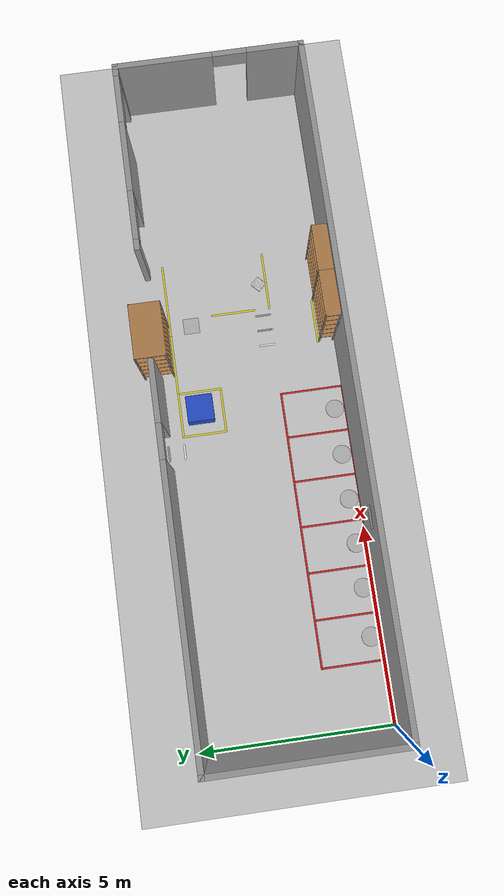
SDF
<sdf version="1.6">
 <world name="default">
  <model name="ground_plane">
   <static>1</static>
   <link name="link">
    <collision name="collision">
     <geometry><plane><normal>0 0 1</normal><size>100 100</size></plane></geometry>
     <surface><friction><ode><mu>100</mu><mu2>50</mu2></ode></friction></surface>
    </collision>
    <visual name="visual">
     <cast_shadows>0</cast_shadows>
     <geometry><plane><normal>0 0 1</normal><size>100 100</size></plane></geometry>
     <material>
      <script><uri>file://media/materials/scripts/gazebo.material</uri><name>Gazebo/Grey</name></script>
     </material>
    </visual>
   </link>
  </model>
  <model name="parkingArea_720x160">
   <link name="link_3">
    <inertial>
     <mass>1</mass>
     <inertia>
      <ixx>0.166667</ixx>
      <ixy>0</ixy>
      <ixz>0</ixz>
      <iyy>0.166667</iyy>
      <iyz>0</iyz>
      <izz>0.166667</izz>
     </inertia>
    </inertial>
    <visual name="visual">
     <pose>0.825 0 0 0 -0 0</pose>
     <geometry><box><size>0.05 7.25 0.001</size></box></geometry>
     <material>
      <lighting>1</lighting>
      <script><uri>file://media/materials/scripts/gazebo.material</uri><name>Gazebo/Red</name></script>
     </material>
    </visual>
    <visual name="ModelPreview_6::link_3::visual_1">
     <pose>-0.825 0 0 0 -0 0</pose>
     <geometry><box><size>0.05 7.25 0.001</size></box></geometry>
     <material>
      <lighting>1</lighting>
      <script><uri>file://media/materials/scripts/gazebo.material</uri><name>Gazebo/Red</name></script>
     </material>
    </visual>
    <visual name="ModelPreview_6::link_3::visual_2">
     <pose>0 3.6 0 0 -0 0</pose>
     <geometry><box><size>1.6 0.05 0.001</size></box></geometry>
     <material>
      <lighting>1</lighting>
      <script><uri>file://media/materials/scripts/gazebo.material</uri><name>Gazebo/Red</name></script>
     </material>
    </visual>
    <visual name="ModelPreview_6::link_3::visual_3">
     <pose>0 -3.6 0 0 -0 0</pose>
     <geometry><box><size>1.6 0.05 0.001</size></box></geometry>
     <material>
      <lighting>1</lighting>
      <script><uri>file://media/materials/scripts/gazebo.material</uri><name>Gazebo/Red</name></script>
     </material>
    </visual>
    <visual name="ModelPreview_6::link_3::visual_4">
     <pose>0 -2.4 0 0 -0 0</pose>
     <geometry><box><size>1.6 0.05 0.001</size></box></geometry>
     <material>
      <lighting>1</lighting>
      <script><uri>file://media/materials/scripts/gazebo.material</uri><name>Gazebo/Red</name></script>
     </material>
    </visual>
    <visual name="ModelPreview_6::link_3::visual_5">
     <pose>0 -1.2 0 0 -0 0</pose>
     <geometry><box><size>1.6 0.05 0.001</size></box></geometry>
     <material>
      <lighting>1</lighting>
      <script><uri>file://media/materials/scripts/gazebo.material</uri><name>Gazebo/Red</name></script>
     </material>
    </visual>
    <visual name="ModelPreview_6::link_3::visual_6">
     <geometry><box><size>1.6 0.05 0.001</size></box></geometry>
     <material>
      <lighting>1</lighting>
      <script><uri>file://media/materials/scripts/gazebo.material</uri><name>Gazebo/Red</name></script>
     </material>
    </visual>
    <visual name="ModelPreview_6::link_3::visual_7">
     <pose>0 1.2 0 0 -0 0</pose>
     <geometry><box><size>1.6 0.05 0.001</size></box></geometry>
     <material>
      <lighting>1</lighting>
      <script><uri>file://media/materials/scripts/gazebo.material</uri><name>Gazebo/Red</name></script>
     </material>
    </visual>
    <visual name="ModelPreview_6::link_3::visual_8">
     <pose>0 2.4 0 0 -0 0</pose>
     <geometry><box><size>1.6 0.05 0.001</size></box></geometry>
     <material>
      <lighting>1</lighting>
      <script><uri>file://media/materials/scripts/gazebo.material</uri><name>Gazebo/Red</name></script>
     </material>
    </visual>
    <visual name="ModelPreview_6::link_3::visual_9">
     <pose>-0.47 2.65 0 0 -0 1</pose>
     <geometry>
      <mesh><uri>model://parkingArea_720x160/model/model.dae</uri><scale>0.266 0.266 0.266</scale></mesh>
     </geometry>
     <material><lighting>1</lighting></material>
    </visual>
    <visual name="ModelPreview_6::link_3::visual_10">
     <pose>-0.47 1.41 0 0 -0 1</pose>
     <geometry>
      <mesh><uri>model://parkingArea_720x160/model/model.dae</uri><scale>0.266 0.266 0.266</scale></mesh>
     </geometry>
     <material><lighting>1</lighting></material>
    </visual>
    <visual name="ModelPreview_6::link_3::visual_11">
     <pose>-0.47 0.26 0 0 -0 1</pose>
     <geometry>
      <mesh><uri>model://parkingArea_720x160/model/model.dae</uri><scale>0.266 0.266 0.266</scale></mesh>
     </geometry>
     <material><lighting>1</lighting></material>
    </visual>
    <visual name="ModelPreview_6::link_3::visual_12">
     <pose>-0.47 -0.9 0 0 -0 1</pose>
     <geometry>
      <mesh><uri>model://parkingArea_720x160/model/model.dae</uri><scale>0.266 0.266 0.266</scale></mesh>
     </geometry>
     <material><lighting>1</lighting></material>
    </visual>
    <visual name="ModelPreview_6::link_3::visual_13">
     <pose>-0.47 -2.1 0 0 -0 1</pose>
     <geometry>
      <mesh><uri>model://parkingArea_720x160/model/model.dae</uri><scale>0.266 0.266 0.8266</scale></mesh>
     </geometry>
     <material><lighting>1</lighting></material>
    </visual>
    <visual name="ModelPreview_6::link_3::visual_14">
     <pose>-0.47 -3.34 0 0 -0 1</pose>
     <geometry>
      <mesh><uri>model://parkingArea_720x160/model/model.dae</uri><scale>0.266 0.266 0.266</scale></mesh>
     </geometry>
    </visual>
   </link>
   <static>1</static>
   <pose>5.2 0.8 0 0 -0 1.5708</pose>
  </model>
  <model name="shelfDemo_120cmx40cm">
   <link name="link_0">
    <inertial>
     <mass>1</mass>
     <inertia>
      <ixx>0.166667</ixx>
      <ixy>0</ixy>
      <ixz>0</ixz>
      <iyy>0.166667</iyy>
      <iyz>0</iyz>
      <izz>0.166667</izz>
     </inertia>
    </inertial>
    <visual name="visual">
     <pose>0 0 0.414 0 -0 0</pose>
     <geometry><box><size>1.2 0.4 0.03</size></box></geometry>
     <material>
      <lighting>1</lighting>
      <script><uri>file://media/materials/scripts/gazebo.material</uri><name>Gazebo/WoodFloor</name></script>
      <shader type="pixel"><normal_map>__default__</normal_map></shader>
     </material>
    </visual>
    <visual name="ModelPreview_0::link_0::visual_2">
     <pose>0 0 0.828 0 -0 0</pose>
     <geometry><box><size>1.2 0.4 0.03</size></box></geometry>
     <material>
      <lighting>1</lighting>
      <script><uri>file://media/materials/scripts/gazebo.material</uri><name>Gazebo/WoodFloor</name></script>
      <shader type="pixel"><normal_map>__default__</normal_map></shader>
     </material>
    </visual>
    <visual name="ModelPreview_0::link_0::visual_3">
     <pose>0 0 1.242 0 -0 0</pose>
     <geometry><box><size>1.2 0.4 0.03</size></box></geometry>
     <material>
      <lighting>1</lighting>
      <script><uri>file://media/materials/scripts/gazebo.material</uri><name>Gazebo/WoodFloor</name></script>
      <shader type="pixel"><normal_map>__default__</normal_map></shader>
     </material>
    </visual>
    <visual name="ModelPreview_0::link_0::visual_4">
     <pose>0 0 1.656 0 -0 0</pose>
     <geometry><box><size>1.2 0.4 0.03</size></box></geometry>
     <material>
      <lighting>1</lighting>
      <script><uri>file://media/materials/scripts/gazebo.material</uri><name>Gazebo/WoodFloor</name></script>
      <shader type="pixel"><normal_map>__default__</normal_map></shader>
     </material>
    </visual>
    <visual name="ModelPreview_0::link_0::visual_5">
     <pose>0 0 2.07 0 -0 0</pose>
     <geometry><box><size>1.2 0.4 0.03</size></box></geometry>
     <material>
      <lighting>1</lighting>
      <script><uri>file://media/materials/scripts/gazebo.material</uri><name>Gazebo/WoodFloor</name></script>
      <shader type="pixel"><normal_map>__default__</normal_map></shader>
     </material>
    </visual>
    <visual name="ModelPreview_0::link_0::visual_6">
     <pose>0 0 2.484 0 -0 0</pose>
     <geometry><box><size>1.2 0.4 0.03</size></box></geometry>
     <material>
      <lighting>1</lighting>
      <script><uri>file://media/materials/scripts/gazebo.material</uri><name>Gazebo/WoodFloor</name></script>
      <shader type="pixel"><normal_map>__default__</normal_map></shader>
     </material>
    </visual>
    <visual name="ModelPreview_0::link_0::visual_7">
     <pose>0.585 0.185 0 0 -0 0</pose>
     <geometry>
      <mesh><uri>model://shelfDemo_91/model/2-5mDirek.stl</uri><scale>0.0008 0.0008 0.001</scale></mesh>
     </geometry>
     <material>
      <lighting>1</lighting>
      <script><uri>file://media/materials/scripts/gazebo.material</uri><name>Gazebo/Grey</name></script>
      <shader type="pixel"><normal_map>__default__</normal_map></shader>
      <ambient>0.3 0.3 0.3 1</ambient>
      <diffuse>0.7 0.7 0.7 1</diffuse>
      <specular>0.01 0.01 0.01 1</specular>
      <emissive>0 0 0 1</emissive>
     </material>
    </visual>
    <visual name="ModelPreview_0::link_0::visual_8">
     <pose>-0.585 0.185 0 0 -0 0</pose>
     <geometry>
      <mesh><uri>model://shelfDemo_91/model/2-5mDirek.stl</uri><scale>0.0008 0.0008 0.001</scale></mesh>
     </geometry>
     <material>
      <lighting>1</lighting>
      <script><uri>file://media/materials/scripts/gazebo.material</uri><name>Gazebo/Grey</name></script>
      <shader type="pixel"><normal_map>__default__</normal_map></shader>
      <ambient>0.3 0.3 0.3 1</ambient>
      <diffuse>0.7 0.7 0.7 1</diffuse>
      <specular>0.01 0.01 0.01 1</specular>
      <emissive>0 0 0 1</emissive>
     </material>
    </visual>
    <visual name="ModelPreview_0::link_0::visual_9">
     <pose>0.585 -0.185 0 0 -0 0</pose>
     <geometry>
      <mesh><uri>model://shelfDemo_91/model/2-5mDirek.stl</uri><scale>0.0008 0.0008 0.001</scale></mesh>
     </geometry>
     <material>
      <lighting>1</lighting>
      <script><uri>file://media/materials/scripts/gazebo.material</uri><name>Gazebo/Grey</name></script>
      <shader type="pixel"><normal_map>__default__</normal_map></shader>
      <ambient>0.3 0.3 0.3 1</ambient>
      <diffuse>0.7 0.7 0.7 1</diffuse>
      <specular>0.01 0.01 0.01 1</specular>
      <emissive>0 0 0 1</emissive>
     </material>
    </visual>
    <visual name="ModelPreview_0::link_0::visual_10">
     <pose>-0.585 -0.185 0 0 -0 0</pose>
     <geometry>
      <mesh><uri>model://shelfDemo_91/model/2-5mDirek.stl</uri><scale>0.0008 0.0008 0.001</scale></mesh>
     </geometry>
     <material>
      <lighting>1</lighting>
      <script><uri>file://media/materials/scripts/gazebo.material</uri><name>Gazebo/Grey</name></script>
      <shader type="pixel"><normal_map>__default__</normal_map></shader>
      <ambient>0.3 0.3 0.3 1</ambient>
      <diffuse>0.7 0.7 0.7 1</diffuse>
      <specular>0.01 0.01 0.01 1</specular>
      <emissive>0 0 0 1</emissive>
     </material>
    </visual>
    <collision name="collision_6">
     <pose>0.585 0.185 1.25 0 -0 0</pose>
     <geometry><box><size>0.02 0.02 2.5</size></box></geometry>
    </collision>
    <collision name="collision_7">
     <pose>0.585 -0.185 1.25 0 -0 0</pose>
     <geometry><box><size>0.02 0.02 2.5</size></box></geometry>
    </collision>
    <collision name="collision_8">
     <pose>-0.585 0.185 1.25 0 -0 0</pose>
     <geometry><box><size>0.02 0.02 2.5</size></box></geometry>
    </collision>
    <collision name="collision">
     <pose>0 0 0.414 0 -0 0</pose>
     <geometry><box><size>1.2 0.4 0.03</size></box></geometry>
    </collision>
    <collision name="collision_1">
     <pose>0 0 0.828 0 -0 0</pose>
     <geometry><box><size>1.2 0.4 0.03</size></box></geometry>
    </collision>
    <collision name="collision_2">
     <pose>0 0 1.242 0 -0 0</pose>
     <geometry><box><size>1.2 0.4 0.03</size></box></geometry>
    </collision>
    <collision name="collision_3">
     <pose>0 0 1.656 0 -0 0</pose>
     <geometry><box><size>1.2 0.4 0.03</size></box></geometry>
    </collision>
    <collision name="collision_4">
     <pose>0 0 2.07 0 -0 0</pose>
     <geometry><box><size>1.2 0.4 0.03</size></box></geometry>
    </collision>
    <collision name="collision_5">
     <pose>0 0 2.484 0 -0 0</pose>
     <geometry><box><size>1.2 0.4 0.03</size></box></geometry>
    </collision>
    <collision name="collision_9">
     <pose>-0.585 -0.185 1.25 0 -0 0</pose>
     <geometry><box><size>0.02 0.02 2.5</size></box></geometry>
    </collision>
   </link>
   <static>1</static>
   <pose>10.7 0.2 0 0 -0 0</pose>
  </model>
  <model name="shelfDemo_120cmx40cm_0">
   <link name="link_0">
    <inertial>
     <mass>1</mass>
     <inertia>
      <ixx>0.166667</ixx>
      <ixy>0</ixy>
      <ixz>0</ixz>
      <iyy>0.166667</iyy>
      <iyz>0</iyz>
      <izz>0.166667</izz>
     </inertia>
    </inertial>
    <visual name="visual">
     <pose>0 0 0.414 0 -0 0</pose>
     <geometry><box><size>1.2 0.4 0.03</size></box></geometry>
     <material>
      <lighting>1</lighting>
      <script><uri>file://media/materials/scripts/gazebo.material</uri><name>Gazebo/WoodFloor</name></script>
      <shader type="pixel"><normal_map>__default__</normal_map></shader>
     </material>
    </visual>
    <visual name="ModelPreview_0::link_0::visual_2">
     <pose>0 0 0.828 0 -0 0</pose>
     <geometry><box><size>1.2 0.4 0.03</size></box></geometry>
     <material>
      <lighting>1</lighting>
      <script><uri>file://media/materials/scripts/gazebo.material</uri><name>Gazebo/WoodFloor</name></script>
      <shader type="pixel"><normal_map>__default__</normal_map></shader>
     </material>
    </visual>
    <visual name="ModelPreview_0::link_0::visual_3">
     <pose>0 0 1.242 0 -0 0</pose>
     <geometry><box><size>1.2 0.4 0.03</size></box></geometry>
     <material>
      <lighting>1</lighting>
      <script><uri>file://media/materials/scripts/gazebo.material</uri><name>Gazebo/WoodFloor</name></script>
      <shader type="pixel"><normal_map>__default__</normal_map></shader>
     </material>
    </visual>
    <visual name="ModelPreview_0::link_0::visual_4">
     <pose>0 0 1.656 0 -0 0</pose>
     <geometry><box><size>1.2 0.4 0.03</size></box></geometry>
     <material>
      <lighting>1</lighting>
      <script><uri>file://media/materials/scripts/gazebo.material</uri><name>Gazebo/WoodFloor</name></script>
      <shader type="pixel"><normal_map>__default__</normal_map></shader>
     </material>
    </visual>
    <visual name="ModelPreview_0::link_0::visual_5">
     <pose>0 0 2.07 0 -0 0</pose>
     <geometry><box><size>1.2 0.4 0.03</size></box></geometry>
     <material>
      <lighting>1</lighting>
      <script><uri>file://media/materials/scripts/gazebo.material</uri><name>Gazebo/WoodFloor</name></script>
      <shader type="pixel"><normal_map>__default__</normal_map></shader>
     </material>
    </visual>
    <visual name="ModelPreview_0::link_0::visual_6">
     <pose>0 0 2.484 0 -0 0</pose>
     <geometry><box><size>1.2 0.4 0.03</size></box></geometry>
     <material>
      <lighting>1</lighting>
      <script><uri>file://media/materials/scripts/gazebo.material</uri><name>Gazebo/WoodFloor</name></script>
      <shader type="pixel"><normal_map>__default__</normal_map></shader>
     </material>
    </visual>
    <visual name="ModelPreview_0::link_0::visual_7">
     <pose>0.585 0.185 0 0 -0 0</pose>
     <geometry>
      <mesh><uri>model://shelfDemo_91/model/2-5mDirek.stl</uri><scale>0.0008 0.0008 0.001</scale></mesh>
     </geometry>
     <material>
      <lighting>1</lighting>
      <script><uri>file://media/materials/scripts/gazebo.material</uri><name>Gazebo/Grey</name></script>
      <shader type="pixel"><normal_map>__default__</normal_map></shader>
      <ambient>0.3 0.3 0.3 1</ambient>
      <diffuse>0.7 0.7 0.7 1</diffuse>
      <specular>0.01 0.01 0.01 1</specular>
      <emissive>0 0 0 1</emissive>
     </material>
    </visual>
    <visual name="ModelPreview_0::link_0::visual_8">
     <pose>-0.585 0.185 0 0 -0 0</pose>
     <geometry>
      <mesh><uri>model://shelfDemo_91/model/2-5mDirek.stl</uri><scale>0.0008 0.0008 0.001</scale></mesh>
     </geometry>
     <material>
      <lighting>1</lighting>
      <script><uri>file://media/materials/scripts/gazebo.material</uri><name>Gazebo/Grey</name></script>
      <shader type="pixel"><normal_map>__default__</normal_map></shader>
      <ambient>0.3 0.3 0.3 1</ambient>
      <diffuse>0.7 0.7 0.7 1</diffuse>
      <specular>0.01 0.01 0.01 1</specular>
      <emissive>0 0 0 1</emissive>
     </material>
    </visual>
    <visual name="ModelPreview_0::link_0::visual_9">
     <pose>0.585 -0.185 0 0 -0 0</pose>
     <geometry>
      <mesh><uri>model://shelfDemo_91/model/2-5mDirek.stl</uri><scale>0.0008 0.0008 0.001</scale></mesh>
     </geometry>
     <material>
      <lighting>1</lighting>
      <script><uri>file://media/materials/scripts/gazebo.material</uri><name>Gazebo/Grey</name></script>
      <shader type="pixel"><normal_map>__default__</normal_map></shader>
      <ambient>0.3 0.3 0.3 1</ambient>
      <diffuse>0.7 0.7 0.7 1</diffuse>
      <specular>0.01 0.01 0.01 1</specular>
      <emissive>0 0 0 1</emissive>
     </material>
    </visual>
    <visual name="ModelPreview_0::link_0::visual_10">
     <pose>-0.585 -0.185 0 0 -0 0</pose>
     <geometry>
      <mesh><uri>model://shelfDemo_91/model/2-5mDirek.stl</uri><scale>0.0008 0.0008 0.001</scale></mesh>
     </geometry>
     <material>
      <lighting>1</lighting>
      <script><uri>file://media/materials/scripts/gazebo.material</uri><name>Gazebo/Grey</name></script>
      <shader type="pixel"><normal_map>__default__</normal_map></shader>
      <ambient>0.3 0.3 0.3 1</ambient>
      <diffuse>0.7 0.7 0.7 1</diffuse>
      <specular>0.01 0.01 0.01 1</specular>
      <emissive>0 0 0 1</emissive>
     </material>
    </visual>
    <collision name="collision_6">
     <pose>0.585 0.185 1.25 0 -0 0</pose>
     <geometry><box><size>0.02 0.02 2.5</size></box></geometry>
    </collision>
    <collision name="collision_7">
     <pose>0.585 -0.185 1.25 0 -0 0</pose>
     <geometry><box><size>0.02 0.02 2.5</size></box></geometry>
    </collision>
    <collision name="collision_8">
     <pose>-0.585 0.185 1.25 0 -0 0</pose>
     <geometry><box><size>0.02 0.02 2.5</size></box></geometry>
    </collision>
    <collision name="collision">
     <pose>0 0 0.414 0 -0 0</pose>
     <geometry><box><size>1.2 0.4 0.03</size></box></geometry>
    </collision>
    <collision name="collision_1">
     <pose>0 0 0.828 0 -0 0</pose>
     <geometry><box><size>1.2 0.4 0.03</size></box></geometry>
    </collision>
    <collision name="collision_2">
     <pose>0 0 1.242 0 -0 0</pose>
     <geometry><box><size>1.2 0.4 0.03</size></box></geometry>
    </collision>
    <collision name="collision_3">
     <pose>0 0 1.656 0 -0 0</pose>
     <geometry><box><size>1.2 0.4 0.03</size></box></geometry>
    </collision>
    <collision name="collision_4">
     <pose>0 0 2.07 0 -0 0</pose>
     <geometry><box><size>1.2 0.4 0.03</size></box></geometry>
    </collision>
    <collision name="collision_5">
     <pose>0 0 2.484 0 -0 0</pose>
     <geometry><box><size>1.2 0.4 0.03</size></box></geometry>
    </collision>
    <collision name="collision_9">
     <pose>-0.585 -0.185 1.25 0 -0 0</pose>
     <geometry><box><size>0.02 0.02 2.5</size></box></geometry>
    </collision>
   </link>
   <static>1</static>
   <pose>11.9 0.2 0 0 -0 0</pose>
  </model>
  <model name="shelfDemo_140cmx80cm">
   <link name="link_0">
    <inertial>
     <mass>1</mass>
     <inertia>
      <ixx>0.166667</ixx>
      <ixy>0</ixy>
      <ixz>0</ixz>
      <iyy>0.166667</iyy>
      <iyz>0</iyz>
      <izz>0.166667</izz>
     </inertia>
    </inertial>
    <visual name="visual">
     <pose>0 0 0.414 0 -0 0</pose>
     <geometry><box><size>1.4 0.8 0.03</size></box></geometry>
     <material>
      <lighting>1</lighting>
      <script><uri>file://media/materials/scripts/gazebo.material</uri><name>Gazebo/WoodFloor</name></script>
      <shader type="pixel"><normal_map>__default__</normal_map></shader>
     </material>
    </visual>
    <visual name="ModelPreview_0::link_0::visual_2">
     <pose>0 0 0.828 0 -0 0</pose>
     <geometry><box><size>1.4 0.8 0.03</size></box></geometry>
     <material>
      <lighting>1</lighting>
      <script><uri>file://media/materials/scripts/gazebo.material</uri><name>Gazebo/WoodFloor</name></script>
      <shader type="pixel"><normal_map>__default__</normal_map></shader>
     </material>
    </visual>
    <visual name="ModelPreview_0::link_0::visual_3">
     <pose>0 0 1.242 0 -0 0</pose>
     <geometry><box><size>1.4 0.8 0.03</size></box></geometry>
     <material>
      <lighting>1</lighting>
      <script><uri>file://media/materials/scripts/gazebo.material</uri><name>Gazebo/WoodFloor</name></script>
      <shader type="pixel"><normal_map>__default__</normal_map></shader>
     </material>
    </visual>
    <visual name="ModelPreview_0::link_0::visual_4">
     <pose>0 0 1.656 0 -0 0</pose>
     <geometry><box><size>1.4 0.8 0.03</size></box></geometry>
     <material>
      <lighting>1</lighting>
      <script><uri>file://media/materials/scripts/gazebo.material</uri><name>Gazebo/WoodFloor</name></script>
      <shader type="pixel"><normal_map>__default__</normal_map></shader>
     </material>
    </visual>
    <visual name="ModelPreview_0::link_0::visual_5">
     <pose>0 0 2.07 0 -0 0</pose>
     <geometry><box><size>1.4 0.8 0.03</size></box></geometry>
     <material>
      <lighting>1</lighting>
      <script><uri>file://media/materials/scripts/gazebo.material</uri><name>Gazebo/WoodFloor</name></script>
      <shader type="pixel"><normal_map>__default__</normal_map></shader>
     </material>
    </visual>
    <visual name="ModelPreview_0::link_0::visual_6">
     <pose>0 0 2.484 0 -0 0</pose>
     <geometry><box><size>1.4 0.8 0.03</size></box></geometry>
     <material>
      <lighting>1</lighting>
      <script><uri>file://media/materials/scripts/gazebo.material</uri><name>Gazebo/WoodFloor</name></script>
      <shader type="pixel"><normal_map>__default__</normal_map></shader>
     </material>
    </visual>
    <visual name="ModelPreview_0::link_0::visual_7">
     <pose>0.685 0.385 0 0 -0 0</pose>
     <geometry>
      <mesh><uri>model://shelfDemo_91/model/2-5mDirek.stl</uri><scale>0.0008 0.0008 0.001</scale></mesh>
     </geometry>
     <material>
      <lighting>1</lighting>
      <script><uri>file://media/materials/scripts/gazebo.material</uri><name>Gazebo/Grey</name></script>
      <shader type="pixel"><normal_map>__default__</normal_map></shader>
      <ambient>0.3 0.3 0.3 1</ambient>
      <diffuse>0.7 0.7 0.7 1</diffuse>
      <specular>0.01 0.01 0.01 1</specular>
      <emissive>0 0 0 1</emissive>
     </material>
    </visual>
    <visual name="ModelPreview_0::link_0::visual_8">
     <pose>-0.685 0.385 0 0 -0 0</pose>
     <geometry>
      <mesh><uri>model://shelfDemo_91/model/2-5mDirek.stl</uri><scale>0.0008 0.0008 0.001</scale></mesh>
     </geometry>
     <material>
      <lighting>1</lighting>
      <script><uri>file://media/materials/scripts/gazebo.material</uri><name>Gazebo/Grey</name></script>
      <shader type="pixel"><normal_map>__default__</normal_map></shader>
      <ambient>0.3 0.3 0.3 1</ambient>
      <diffuse>0.7 0.7 0.7 1</diffuse>
      <specular>0.01 0.01 0.01 1</specular>
      <emissive>0 0 0 1</emissive>
     </material>
    </visual>
    <visual name="ModelPreview_0::link_0::visual_9">
     <pose>0.685 -0.385 0 0 -0 0</pose>
     <geometry>
      <mesh><uri>model://shelfDemo_91/model/2-5mDirek.stl</uri><scale>0.0008 0.0008 0.001</scale></mesh>
     </geometry>
     <material>
      <lighting>1</lighting>
      <script><uri>file://media/materials/scripts/gazebo.material</uri><name>Gazebo/Grey</name></script>
      <shader type="pixel"><normal_map>__default__</normal_map></shader>
      <ambient>0.3 0.3 0.3 1</ambient>
      <diffuse>0.7 0.7 0.7 1</diffuse>
      <specular>0.01 0.01 0.01 1</specular>
      <emissive>0 0 0 1</emissive>
     </material>
    </visual>
    <visual name="ModelPreview_0::link_0::visual_10">
     <pose>-0.685 -0.385 0 0 -0 0</pose>
     <geometry>
      <mesh><uri>model://shelfDemo_91/model/2-5mDirek.stl</uri><scale>0.0008 0.0008 0.001</scale></mesh>
     </geometry>
     <material>
      <lighting>1</lighting>
      <script><uri>file://media/materials/scripts/gazebo.material</uri><name>Gazebo/Grey</name></script>
      <shader type="pixel"><normal_map>__default__</normal_map></shader>
      <ambient>0.3 0.3 0.3 1</ambient>
      <diffuse>0.7 0.7 0.7 1</diffuse>
      <specular>0.01 0.01 0.01 1</specular>
      <emissive>0 0 0 1</emissive>
     </material>
    </visual>
    <collision name="collision_6">
     <pose>0.685 0.385 1.25 0 -0 0</pose>
     <geometry><box><size>0.02 0.02 2.5</size></box></geometry>
    </collision>
    <collision name="collision_7">
     <pose>0.685 -0.385 1.25 0 -0 0</pose>
     <geometry><box><size>0.02 0.02 2.5</size></box></geometry>
    </collision>
    <collision name="collision_8">
     <pose>-0.685 0.385 1.25 0 -0 0</pose>
     <geometry><box><size>0.02 0.02 2.5</size></box></geometry>
    </collision>
    <collision name="collision">
     <pose>0 0 0.414 0 -0 0</pose>
     <geometry><box><size>1.4 0.8 0.03</size></box></geometry>
    </collision>
    <collision name="collision_1">
     <pose>0 0 0.828 0 -0 0</pose>
     <geometry><box><size>1.4 0.8 0.03</size></box></geometry>
    </collision>
    <collision name="collision_2">
     <pose>0 0 1.242 0 -0 0</pose>
     <geometry><box><size>1.4 0.8 0.03</size></box></geometry>
    </collision>
    <collision name="collision_3">
     <pose>0 0 1.656 0 -0 0</pose>
     <geometry><box><size>1.4 0.8 0.03</size></box></geometry>
    </collision>
    <collision name="collision_4">
     <pose>0 0 2.07 0 -0 0</pose>
     <geometry><box><size>1.4 0.8 0.03</size></box></geometry>
    </collision>
    <collision name="collision_5">
     <pose>0 0 2.484 0 -0 0</pose>
     <geometry><box><size>1.4 0.8 0.03</size></box></geometry>
    </collision>
    <collision name="collision_9">
     <pose>-0.685 -0.385 1.25 0 -0 0</pose>
     <geometry><box><size>0.02 0.02 2.5</size></box></geometry>
    </collision>
   </link>
   <static>1</static>
   <pose>10.38 4.8 0 0 -0 0</pose>
  </model>
  <model name="line120cm_0">
   <link name="link_1">
    <inertial>
     <mass>1</mass>
     <inertia>
      <ixx>0.166667</ixx>
      <ixy>0</ixy>
      <ixz>0</ixz>
      <iyy>0.166667</iyy>
      <iyz>0</iyz>
      <izz>0.166667</izz>
     </inertia>
    </inertial>
    <visual name="visual">
     <geometry><box><size>1.2 0.05 0.001</size></box></geometry>
     <material>
      <script><uri>file://media/materials/scripts/gazebo.material</uri><name>Gazebo/Yellow</name></script>
     </material>
    </visual>
    <collision name="collision"><geometry><box><size>1.2 0.05 1e-05</size></box></geometry></collision>
   </link>
   <static>1</static>
   <pose>11.225 2.6 0 0 -0 1.5708</pose>
  </model>
  <model name="line120cm_5">
   <link name="link_1">
    <inertial>
     <mass>1</mass>
     <inertia>
      <ixx>0.166667</ixx>
      <ixy>0</ixy>
      <ixz>0</ixz>
      <iyy>0.166667</iyy>
      <iyz>0</iyz>
      <izz>0.166667</izz>
     </inertia>
    </inertial>
    <visual name="visual">
     <geometry><box><size>1.2 0.05 0.001</size></box></geometry>
     <material>
      <script><uri>file://media/materials/scripts/gazebo.material</uri><name>Gazebo/Yellow</name></script>
     </material>
    </visual>
    <collision name="collision"><geometry><box><size>1.2 0.05 1e-05</size></box></geometry></collision>
   </link>
   <static>1</static>
   <pose>8.6 4.375 0 0 -0 0</pose>
  </model>
  <model name="line120cm_6">
   <link name="link_1">
    <inertial>
     <mass>1</mass>
     <inertia>
      <ixx>0.166667</ixx>
      <ixy>0</ixy>
      <ixz>0</ixz>
      <iyy>0.166667</iyy>
      <iyz>0</iyz>
      <izz>0.166667</izz>
     </inertia>
    </inertial>
    <visual name="visual">
     <geometry><box><size>1.2 0.05 0.001</size></box></geometry>
     <material>
      <script><uri>file://media/materials/scripts/gazebo.material</uri><name>Gazebo/Yellow</name></script>
     </material>
    </visual>
    <collision name="collision"><geometry><box><size>1.2 0.05 1e-05</size></box></geometry></collision>
   </link>
   <static>1</static>
   <pose>8 3.8 0 0 -0 1.5708</pose>
  </model>
  <model name="line120cm_7">
   <link name="link_1">
    <inertial>
     <mass>1</mass>
     <inertia>
      <ixx>0.166667</ixx>
      <ixy>0</ixy>
      <ixz>0</ixz>
      <iyy>0.166667</iyy>
      <iyz>0</iyz>
      <izz>0.166667</izz>
     </inertia>
    </inertial>
    <visual name="visual">
     <geometry><box><size>1.2 0.05 0.001</size></box></geometry>
     <material>
      <script><uri>file://media/materials/scripts/gazebo.material</uri><name>Gazebo/Yellow</name></script>
     </material>
    </visual>
    <collision name="collision"><geometry><box><size>1.2 0.05 1e-05</size></box></geometry></collision>
   </link>
   <static>1</static>
   <pose>8.6 3.225 0 0 -0 0</pose>
  </model>
  <model name="line120cm_8">
   <link name="link_1">
    <inertial>
     <mass>1</mass>
     <inertia>
      <ixx>0.166667</ixx>
      <ixy>0</ixy>
      <ixz>0</ixz>
      <iyy>0.166667</iyy>
      <iyz>0</iyz>
      <izz>0.166667</izz>
     </inertia>
    </inertial>
    <visual name="visual">
     <geometry><box><size>1.2 0.05 0.001</size></box></geometry>
     <material>
      <script><uri>file://media/materials/scripts/gazebo.material</uri><name>Gazebo/Yellow</name></script>
     </material>
    </visual>
    <collision name="collision"><geometry><box><size>1.2 0.05 1e-05</size></box></geometry></collision>
   </link>
   <static>1</static>
   <pose>9.175 3.8 0 0 -0 1.5708</pose>
  </model>
  <model name="line160cm_1">
   <link name="link_1">
    <inertial>
     <mass>1</mass>
     <inertia>
      <ixx>0.166667</ixx>
      <ixy>0</ixy>
      <ixz>0</ixz>
      <iyy>0.166667</iyy>
      <iyz>0</iyz>
      <izz>0.166667</izz>
     </inertia>
    </inertial>
    <visual name="visual">
     <geometry><box><size>1.6 0.05 0.001</size></box></geometry>
     <material>
      <script><uri>file://media/materials/scripts/gazebo.material</uri><name>Gazebo/Yellow</name></script>
     </material>
    </visual>
    <collision name="collision"><geometry><box><size>1.6 0.05 1e-05</size></box></geometry></collision>
   </link>
   <static>1</static>
   <pose>12 1.6 0 0 -0 0</pose>
  </model>
  <model name="newPedestrianSign">
   <link name="link_7">
    <inertial>
     <mass>1</mass>
     <inertia>
      <ixx>0.166667</ixx>
      <ixy>0</ixy>
      <ixz>0</ixz>
      <iyy>0.166667</iyy>
      <iyz>0</iyz>
      <izz>0.166667</izz>
     </inertia>
    </inertial>
    <visual name="visual">
     <pose>-0.2 -0.2 0 -1.5708 -0 0</pose>
     <geometry>
      <mesh><uri>model://newPedestrianSign/model/model.dae</uri><scale>0.5 0.5 0.5</scale></mesh>
     </geometry>
     <material><lighting>1</lighting></material>
    </visual>
    <collision name="collision">
     <pose>0 0 0 0 -0 0.785398</pose>
     <geometry><box><size>0.28 0.28 1e-05</size></box></geometry>
    </collision>
   </link>
   <static>1</static>
   <pose>12 1.85 0 0 -0 0</pose>
  </model>
  <model name="whiteLine_42">
   <link name="link_3">
    <inertial>
     <mass>1</mass>
     <inertia>
      <ixx>0.166667</ixx>
      <ixy>0</ixy>
      <ixz>0</ixz>
      <iyy>0.166667</iyy>
      <iyz>0</iyz>
      <izz>0.166667</izz>
     </inertia>
    </inertial>
    <visual name="visual">
     <pose>-0.21 0 0 0 -0 0</pose>
     <geometry><box><size>0.05 0.42 0.001</size></box></geometry>
     <material>
      <lighting>1</lighting>
      <script><uri>file://media/materials/scripts/gazebo.material</uri><name>Gazebo/White</name></script>
      <shader type="pixel"><normal_map>__default__</normal_map></shader>
      <ambient>1 1 1 1</ambient>
      <diffuse>1 1 1 1</diffuse>
      <specular>0.01 0.01 0.01 1</specular>
      <emissive>0 0 0 1</emissive>
     </material>
    </visual>
    <visual name="ModelPreview_7::link_3::visual_1">
     <pose>0.21 0 0 0 -0 0</pose>
     <geometry><box><size>0.05 0.42 0.001</size></box></geometry>
     <material>
      <lighting>1</lighting>
      <script><uri>file://media/materials/scripts/gazebo.material</uri><name>Gazebo/Grey</name></script>
      <shader type="pixel"><normal_map>__default__</normal_map></shader>
      <ambient>1 1 1 1</ambient>
      <diffuse>1 1 1 1</diffuse>
      <specular>0.01 0.01 0.01 1</specular>
      <emissive>0 0 0 1</emissive>
     </material>
    </visual>
    <collision name="collision">
     <pose>-0.21 0 0 0 -0 0</pose>
     <geometry><box><size>0.05 0.42 1e-05</size></box></geometry>
    </collision>
    <collision name="collision_1">
     <pose>0.21 0 0 0 -0 0</pose>
     <geometry><box><size>0.05 0.42 1e-05</size></box></geometry>
    </collision>
   </link>
   <static>1</static>
   <pose>10.4126 1.8 0 0 -0 0</pose>
  </model>
  <model name="whiteLine_42_0">
   <link name="link_3">
    <inertial>
     <mass>1</mass>
     <inertia>
      <ixx>0.166667</ixx>
      <ixy>0</ixy>
      <ixz>0</ixz>
      <iyy>0.166667</iyy>
      <iyz>0</iyz>
      <izz>0.166667</izz>
     </inertia>
    </inertial>
    <visual name="visual">
     <pose>-0.21 0 0 0 -0 0</pose>
     <geometry><box><size>0.05 0.42 0.001</size></box></geometry>
     <material>
      <lighting>1</lighting>
      <script><uri>file://media/materials/scripts/gazebo.material</uri><name>Gazebo/White</name></script>
      <shader type="pixel"><normal_map>__default__</normal_map></shader>
      <ambient>1 1 1 1</ambient>
      <diffuse>1 1 1 1</diffuse>
      <specular>0.01 0.01 0.01 1</specular>
      <emissive>0 0 0 1</emissive>
     </material>
    </visual>
    <visual name="ModelPreview_7::link_3::visual_1">
     <pose>0.21 0 0 0 -0 0</pose>
     <geometry><box><size>0.05 0.42 0.001</size></box></geometry>
     <material>
      <lighting>1</lighting>
      <script><uri>file://media/materials/scripts/gazebo.material</uri><name>Gazebo/Grey</name></script>
      <shader type="pixel"><normal_map>__default__</normal_map></shader>
      <ambient>1 1 1 1</ambient>
      <diffuse>1 1 1 1</diffuse>
      <specular>0.01 0.01 0.01 1</specular>
      <emissive>0 0 0 1</emissive>
     </material>
    </visual>
    <collision name="collision">
     <pose>-0.21 0 0 0 -0 0</pose>
     <geometry><box><size>0.05 0.42 1e-05</size></box></geometry>
    </collision>
    <collision name="collision_1">
     <pose>0.21 0 0 0 -0 0</pose>
     <geometry><box><size>0.05 0.42 1e-05</size></box></geometry>
    </collision>
   </link>
   <static>1</static>
   <pose>10.8318 1.8 0 0 -0 0</pose>
  </model>
  <model name="forkliftRoadSign_0">
   <link name="link_7">
    <inertial>
     <mass>1</mass>
     <inertia>
      <ixx>0.166667</ixx>
      <ixy>0</ixy>
      <ixz>0</ixz>
      <iyy>0.166667</iyy>
      <iyz>0</iyz>
      <izz>0.166667</izz>
     </inertia>
    </inertial>
    <visual name="visual">
     <pose>-0.2 -0.2 0.01 -1.5708 -0 0</pose>
     <geometry>
      <mesh><uri>model://forkliftRoadSign/model/model.dae</uri><scale>0.7 0.7 0.7</scale></mesh>
     </geometry>
     <material><lighting>1</lighting></material>
    </visual>
    <collision name="collision"><geometry><box><size>0.4 0.4 1e-05</size></box></geometry></collision>
   </link>
   <static>1</static>
   <pose>11 3.8 0 0 0 -1.5708</pose>
  </model>
  <model name="line2m_0">
   <link name="link_0">
    <inertial>
     <mass>1</mass>
     <inertia>
      <ixx>0.166667</ixx>
      <ixy>0</ixy>
      <ixz>0</ixz>
      <iyy>0.166667</iyy>
      <iyz>0</iyz>
      <izz>0.166667</izz>
     </inertia>
    </inertial>
    <visual name="visual">
     <geometry><box><size>2 0.05 0.001</size></box></geometry>
     <material>
      <lighting>1</lighting>
      <script><uri>file://media/materials/scripts/gazebo.material</uri><name>Gazebo/Yellow</name></script>
     </material>
    </visual>
    <collision name="collision"><geometry><box><size>2 0.05 1e-05</size></box></geometry></collision>
   </link>
   <static>1</static>
   <pose>11.8 4.375 0 0 -0 0</pose>
  </model>
  <model name="line2m_1">
   <link name="link_0">
    <inertial>
     <mass>1</mass>
     <inertia>
      <ixx>0.166667</ixx>
      <ixy>0</ixy>
      <ixz>0</ixz>
      <iyy>0.166667</iyy>
      <iyz>0</iyz>
      <izz>0.166667</izz>
     </inertia>
    </inertial>
    <visual name="visual">
     <geometry><box><size>2 0.05 0.001</size></box></geometry>
     <material>
      <lighting>1</lighting>
      <script><uri>file://media/materials/scripts/gazebo.material</uri><name>Gazebo/Yellow</name></script>
     </material>
    </visual>
    <collision name="collision"><geometry><box><size>2 0.05 1e-05</size></box></geometry></collision>
   </link>
   <static>1</static>
   <pose>10.1924 4.375 0 0 -0 0</pose>
  </model>
  <model name="whiteLine_42_4">
   <link name="link_3">
    <inertial>
     <mass>1</mass>
     <inertia>
      <ixx>0.166667</ixx>
      <ixy>0</ixy>
      <ixz>0</ixz>
      <iyy>0.166667</iyy>
      <iyz>0</iyz>
      <izz>0.166667</izz>
     </inertia>
    </inertial>
    <visual name="visual">
     <pose>-0.21 0 0 0 -0 0</pose>
     <geometry><box><size>0.05 0.42 0.001</size></box></geometry>
     <material>
      <lighting>1</lighting>
      <script><uri>file://media/materials/scripts/gazebo.material</uri><name>Gazebo/White</name></script>
      <shader type="pixel"><normal_map>__default__</normal_map></shader>
      <ambient>1 1 1 1</ambient>
      <diffuse>1 1 1 1</diffuse>
      <specular>0.01 0.01 0.01 1</specular>
      <emissive>0 0 0 1</emissive>
     </material>
    </visual>
    <visual name="ModelPreview_7::link_3::visual_1">
     <pose>0.21 0 0 0 -0 0</pose>
     <geometry><box><size>0.05 0.42 0.001</size></box></geometry>
     <material>
      <lighting>1</lighting>
      <script><uri>file://media/materials/scripts/gazebo.material</uri><name>Gazebo/Grey</name></script>
      <shader type="pixel"><normal_map>__default__</normal_map></shader>
      <ambient>1 1 1 1</ambient>
      <diffuse>1 1 1 1</diffuse>
      <specular>0.01 0.01 0.01 1</specular>
      <emissive>0 0 0 1</emissive>
     </material>
    </visual>
    <collision name="collision">
     <pose>-0.21 0 0 0 -0 0</pose>
     <geometry><box><size>0.05 0.42 1e-05</size></box></geometry>
    </collision>
    <collision name="collision_1">
     <pose>0.21 0 0 0 -0 0</pose>
     <geometry><box><size>0.05 0.42 1e-05</size></box></geometry>
    </collision>
   </link>
   <static>1</static>
   <pose>7.6 4.6 0 0 -0 1.5708</pose>
  </model>
  <model name="demoPlaceWallv3">
   <pose>8.719 2.353 0 0 -0 0</pose>
   <link name="Wall_0">
    <collision name="Wall_0_Collision">
     <geometry><box><size>17.75 0.15 2.5</size></box></geometry>
     <pose>0 0 1.25 0 -0 0</pose>
    </collision>
    <visual name="Wall_0_Visual">
     <pose>0 0 1.25 0 -0 0</pose>
     <geometry><box><size>17.75 0.15 2.5</size></box></geometry>
     <material>
      <script><uri>file://media/materials/scripts/gazebo.material</uri><name>Gazebo/Grey</name></script>
      <ambient>1 1 1 1</ambient>
     </material>
     <meta><layer>0</layer></meta>
    </visual>
    <pose>0 -2.447 0 0 -0 0</pose>
   </link>
   <link name="Wall_2">
    <collision name="Wall_2_Collision">
     <geometry><box><size>5.044 0.15 2.5</size></box></geometry>
     <pose>0 0 1.25 0 -0 0</pose>
    </collision>
    <visual name="Wall_2_Visual">
     <pose>0 0 1.25 0 -0 0</pose>
     <geometry><box><size>5.044 0.15 2.5</size></box></geometry>
     <material>
      <script><uri>file://media/materials/scripts/gazebo.material</uri><name>Gazebo/Grey</name></script>
      <ambient>1 1 1 1</ambient>
     </material>
     <meta><layer>0</layer></meta>
    </visual>
    <pose>-8.8 0 0 0 -0 1.5708</pose>
   </link>
   <link name="Wall_4">
    <pose>0 2.447 0 0 -0 0</pose>
    <visual name="Wall_4_Visual_0">
     <pose>-5.222 0 1.25 0 -0 0</pose>
     <geometry><box><size>7.306 0.15 2.5</size></box></geometry>
     <material>
      <script><uri>file://media/materials/scripts/gazebo.material</uri><name>Gazebo/Grey</name></script>
      <ambient>1 1 1 1</ambient>
     </material>
     <meta><layer>0</layer></meta>
    </visual>
    <collision name="Wall_4_Collision_0">
     <geometry><box><size>7.306 0.15 2.5</size></box></geometry>
     <pose>-5.222 0 1.25 0 -0 0</pose>
    </collision>
    <visual name="Wall_4_Visual_1">
     <pose>0.136 0 1.25 0 -0 0</pose>
     <geometry><box><size>1.61 0.15 2.5</size></box></geometry>
     <material>
      <script><uri>file://media/materials/scripts/gazebo.material</uri><name>Gazebo/Grey</name></script>
      <ambient>1 1 1 1</ambient>
     </material>
     <meta><layer>0</layer></meta>
    </visual>
    <collision name="Wall_4_Collision_1">
     <geometry><box><size>1.61 0.15 2.5</size></box></geometry>
     <pose>0.136 0 1.25 0 -0 0</pose>
    </collision>
    <visual name="Wall_4_Visual_2">
     <pose>3.886 0 1.25 0 -0 0</pose>
     <geometry><box><size>0.289999 0.15 2.5</size></box></geometry>
     <material>
      <script><uri>file://media/materials/scripts/gazebo.material</uri><name>Gazebo/Grey</name></script>
      <ambient>1 1 1 1</ambient>
     </material>
     <meta><layer>0</layer></meta>
    </visual>
    <collision name="Wall_4_Collision_2">
     <geometry><box><size>0.289999 0.15 2.5</size></box></geometry>
     <pose>3.886 0 1.25 0 -0 0</pose>
    </collision>
    <visual name="Wall_4_Visual_3">
     <pose>6.281 0 1.25 0 -0 0</pose>
     <geometry><box><size>1.9 0.15 2.5</size></box></geometry>
     <material>
      <script><uri>file://media/materials/scripts/gazebo.material</uri><name>Gazebo/Grey</name></script>
      <ambient>1 1 1 1</ambient>
     </material>
     <meta><layer>0</layer></meta>
    </visual>
    <collision name="Wall_4_Collision_3">
     <geometry><box><size>1.9 0.15 2.5</size></box></geometry>
     <pose>6.281 0 1.25 0 -0 0</pose>
    </collision>
    <visual name="Wall_4_Visual_4">
     <pose>8.703 0 1.25 0 -0 0</pose>
     <geometry><box><size>0.343999 0.15 2.5</size></box></geometry>
     <material>
      <script><uri>file://media/materials/scripts/gazebo.material</uri><name>Gazebo/Grey</name></script>
      <ambient>1 1 1 1</ambient>
     </material>
     <meta><layer>0</layer></meta>
    </visual>
    <collision name="Wall_4_Collision_4">
     <geometry><box><size>0.343999 0.15 2.5</size></box></geometry>
     <pose>8.703 0 1.25 0 -0 0</pose>
    </collision>
    <visual name="Wall_4_Visual_5">
     <pose>-1.119 0 2.25 0 -0 0</pose>
     <geometry><box><size>0.9 0.15 0.5</size></box></geometry>
     <material>
      <script><uri>file://media/materials/scripts/gazebo.material</uri><name>Gazebo/Grey</name></script>
      <ambient>1 1 1 1</ambient>
     </material>
     <meta><layer>0</layer></meta>
    </visual>
    <collision name="Wall_4_Collision_5">
     <geometry><box><size>0.9 0.15 0.5</size></box></geometry>
     <pose>-1.119 0 2.25 0 -0 0</pose>
    </collision>
    <visual name="Wall_4_Visual_6">
     <pose>4.681 0 2.25 0 -0 0</pose>
     <geometry><box><size>1.3 0.15 0.5</size></box></geometry>
     <material>
      <script><uri>file://media/materials/scripts/gazebo.material</uri><name>Gazebo/Grey</name></script>
      <ambient>1 1 1 1</ambient>
     </material>
     <meta><layer>0</layer></meta>
    </visual>
    <collision name="Wall_4_Collision_6">
     <geometry><box><size>1.3 0.15 0.5</size></box></geometry>
     <pose>4.681 0 2.25 0 -0 0</pose>
    </collision>
    <visual name="Wall_4_Visual_7">
     <pose>7.881 0 2.25 0 -0 0</pose>
     <geometry><box><size>1.3 0.15 0.5</size></box></geometry>
     <material>
      <script><uri>file://media/materials/scripts/gazebo.material</uri><name>Gazebo/Grey</name></script>
      <ambient>1 1 1 1</ambient>
     </material>
     <meta><layer>0</layer></meta>
    </visual>
    <collision name="Wall_4_Collision_7">
     <geometry><box><size>1.3 0.15 0.5</size></box></geometry>
     <pose>7.881 0 2.25 0 -0 0</pose>
    </collision>
   </link>
   <link name="Wall_6">
    <pose>8.8 0 0 0 -0 -1.5708</pose>
    <visual name="Wall_6_Visual_0">
     <pose>-1.2095 0 1.25 0 -0 0</pose>
     <geometry><box><size>2.625 0.15 2.5</size></box></geometry>
     <material>
      <script><uri>file://media/materials/scripts/gazebo.material</uri><name>Gazebo/Grey</name></script>
      <ambient>1 1 1 1</ambient>
     </material>
     <meta><layer>0</layer></meta>
    </visual>
    <collision name="Wall_6_Collision_0">
     <geometry><box><size>2.625 0.15 2.5</size></box></geometry>
     <pose>-1.2095 0 1.25 0 -0 0</pose>
    </collision>
    <visual name="Wall_6_Visual_1">
     <pose>1.7625 0 1.25 0 -0 0</pose>
     <geometry><box><size>1.519 0.15 2.5</size></box></geometry>
     <material>
      <script><uri>file://media/materials/scripts/gazebo.material</uri><name>Gazebo/Grey</name></script>
      <ambient>1 1 1 1</ambient>
     </material>
     <meta><layer>0</layer></meta>
    </visual>
    <collision name="Wall_6_Collision_1">
     <geometry><box><size>1.519 0.15 2.5</size></box></geometry>
     <pose>1.7625 0 1.25 0 -0 0</pose>
    </collision>
    <visual name="Wall_6_Visual_2">
     <pose>0.553 0 2.25 0 -0 0</pose>
     <geometry><box><size>0.9 0.15 0.5</size></box></geometry>
     <material>
      <script><uri>file://media/materials/scripts/gazebo.material</uri><name>Gazebo/Grey</name></script>
      <ambient>1 1 1 1</ambient>
     </material>
     <meta><layer>0</layer></meta>
    </visual>
    <collision name="Wall_6_Collision_2">
     <geometry><box><size>0.9 0.15 0.5</size></box></geometry>
     <pose>0.553 0 2.25 0 -0 0</pose>
    </collision>
   </link>
   <static>1</static>
  </model>
  <model name="line120cm_16">
   <link name="link_1">
    <inertial>
     <mass>1</mass>
     <inertia>
      <ixx>0.166667</ixx>
      <ixy>0</ixy>
      <ixz>0</ixz>
      <iyy>0.166667</iyy>
      <iyz>0</iyz>
      <izz>0.166667</izz>
     </inertia>
    </inertial>
    <visual name="visual">
     <geometry><box><size>1.2 0.05 0.001</size></box></geometry>
     <material>
      <script><uri>file://media/materials/scripts/gazebo.material</uri><name>Gazebo/Yellow</name></script>
     </material>
    </visual>
    <collision name="collision"><geometry><box><size>1.2 0.05 1e-05</size></box></geometry></collision>
   </link>
   <static>1</static>
   <pose>10.68 0.425 0 0 -0 0</pose>
  </model>
  <model name="60x45sign_agv">
   <link name="link_0">
    <inertial>
     <mass>1</mass>
     <inertia>
      <ixx>0.166667</ixx>
      <ixy>0</ixy>
      <ixz>0</ixz>
      <iyy>0.166667</iyy>
      <iyz>0</iyz>
      <izz>0.166667</izz>
     </inertia>
    </inertial>
    <visual name="visual">
     <pose>-0.3 0 -0.225 0 -0 0</pose>
     <geometry><mesh><uri>model://60x45sign_agv/model/model.dae</uri><scale>2 2 2</scale></mesh></geometry>
     <material><lighting>1</lighting></material>
    </visual>
    <collision name="collision"><geometry><box><size>0.6 0.005 0.45</size></box></geometry></collision>
   </link>
   <static>1</static>
   <pose>5.15 -0.008 1.65 0 -0 3.1415</pose>
  </model>
  <model name="robot_kolu_070">
   <link name="link_0">
    <inertial>
     <mass>1</mass>
     <inertia>
      <ixx>0.166667</ixx>
      <ixy>0</ixy>
      <ixz>0</ixz>
      <iyy>0.166667</iyy>
      <iyz>0</iyz>
      <izz>0.166667</izz>
     </inertia>
    </inertial>
    <visual name="visual">
     <geometry><box><size>0.7 0.7 1</size></box></geometry>
     <material>
      <lighting>1</lighting>
      <script><uri>file://media/materials/scripts/gazebo.material</uri><name>Gazebo/Blue</name></script>
     </material>
    </visual>
    <collision name="collision">
     <geometry><box><size>0.7 0.7 1</size></box></geometry>
     <surface>
      <friction>
       <ode><mu>1</mu><mu2>1</mu2><fdir1>0 0 0</fdir1><slip1>0</slip1><slip2>0</slip2></ode>
       <torsional>
        <coefficient>1</coefficient>
        <patch_radius>0</patch_radius>
        <surface_radius>0</surface_radius>
        <use_patch_radius>1</use_patch_radius>
        <ode><slip>0</slip></ode>
       </torsional>
      </friction>
      <bounce><restitution_coefficient>0</restitution_coefficient><threshold>1e+06</threshold></bounce>
      <contact>
       <collide_without_contact>0</collide_without_contact>
       <collide_without_contact_bitmask>1</collide_without_contact_bitmask>
       <collide_bitmask>1</collide_bitmask>
       <ode>
        <soft_cfm>0</soft_cfm>
        <soft_erp>0.2</soft_erp>
        <kp>1e+13</kp>
        <kd>1</kd>
        <max_vel>0.01</max_vel>
        <min_depth>0</min_depth>
       </ode>
       <bullet>
        <split_impulse>1</split_impulse>
        <split_impulse_penetration_threshold>-0.01</split_impulse_penetration_threshold>
        <soft_cfm>0</soft_cfm>
        <soft_erp>0.2</soft_erp>
        <kp>1e+13</kp>
        <kd>1</kd>
       </bullet>
      </contact>
     </surface>
    </collision>
   </link>
   <static>1</static>
   <pose>8.6436 3.8295 0 0 -0 0</pose>
  </model>
 </world>
</sdf>
